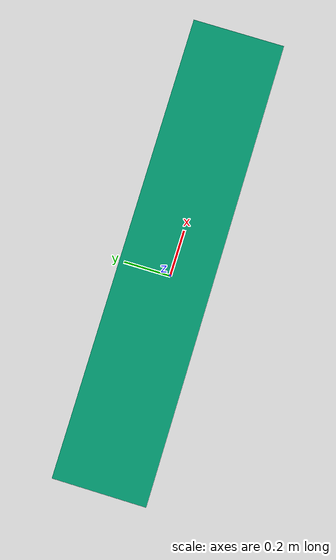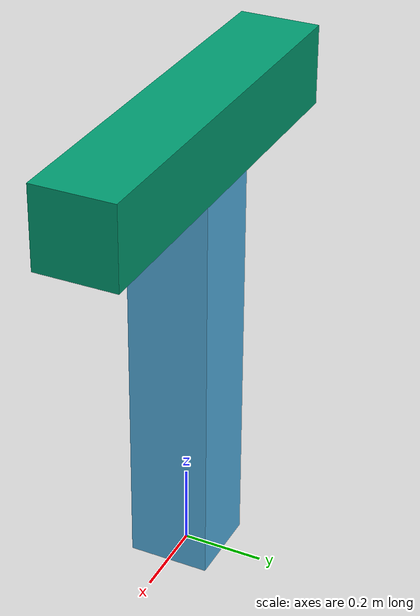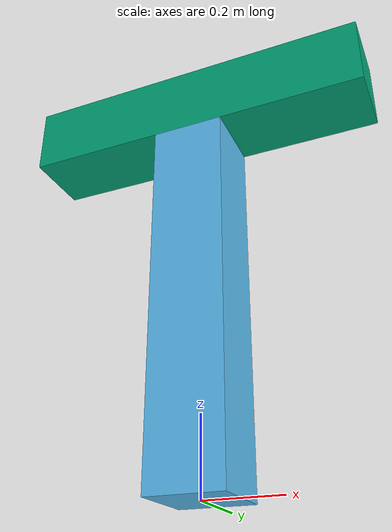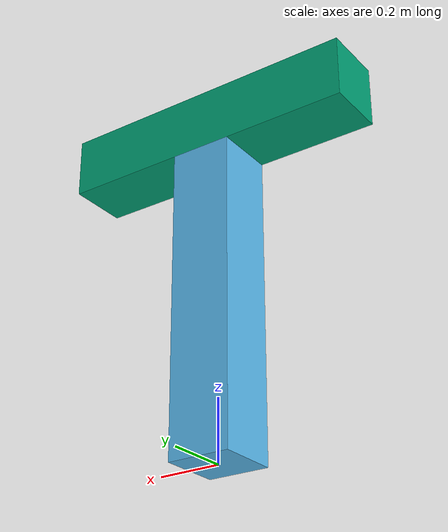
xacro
<?xml version='1.0'?>
<robot name="simple_model" xmlns:xacro="http://ros.org/wiki/xacro">

  <link name="world"/>

  <joint name="fixed" type="fixed">
    <parent link="world"/>
    <child link="link_0"/>
  </joint>

  <link name='link_0'>
    <inertial>
      <origin xyz="0 0 0.5" rpy="0 0 0"/>
      <mass value="1"/>
      <inertia
        ixx="0.166667" ixy="0.0" ixz="0.0"
        iyy="0.166667" iyz="0.0"
        izz="0.166667"/>
    </inertial>

    <visual>
      <origin rpy="0 0 0" xyz = "0 0 0.5"/>
      <geometry>
        <box size="0.2 0.2 1"/>
      </geometry>
    </visual>

    <collision>
      <origin xyz="0 0 0.5" rpy="0 0 0"/>
      <geometry>
        <box size="0.2 0.2 1"/>
      </geometry>
    </collision>
  </link>

  <link name='link_1'>
    <inertial>
      <origin xyz="0 0 0.1" rpy="0 0 0"/>
      <mass value="1"/>
      <inertia
        ixx="0.166667" ixy="0.0" ixz="0.0"
        iyy="0.166667" iyz="0.0"
        izz="0.166667"/>
    </inertial>

    <visual>
      <origin rpy="0 0 0" xyz = "0 0 0.1"/>
      <geometry>
        <box size="1 0.2 0.2"/>
      </geometry>
    </visual>

    <collision>
      <origin rpy="0 0 0" xyz = "0 0 0.1"/>
      <geometry>
        <box size="1 0.2 0.2"/>
      </geometry>
    </collision>
  </link>

  <joint name="link_0_JOINT_0" type="continuous">
      <axis xyz="0 0 1"/>
      <origin rpy="0 0 0" xyz="0 0 1"/>
      <parent link = "link_0"/>
      <child link="link_1"/>
      <dynamics damping="0"/>
  </joint>

</robot>
